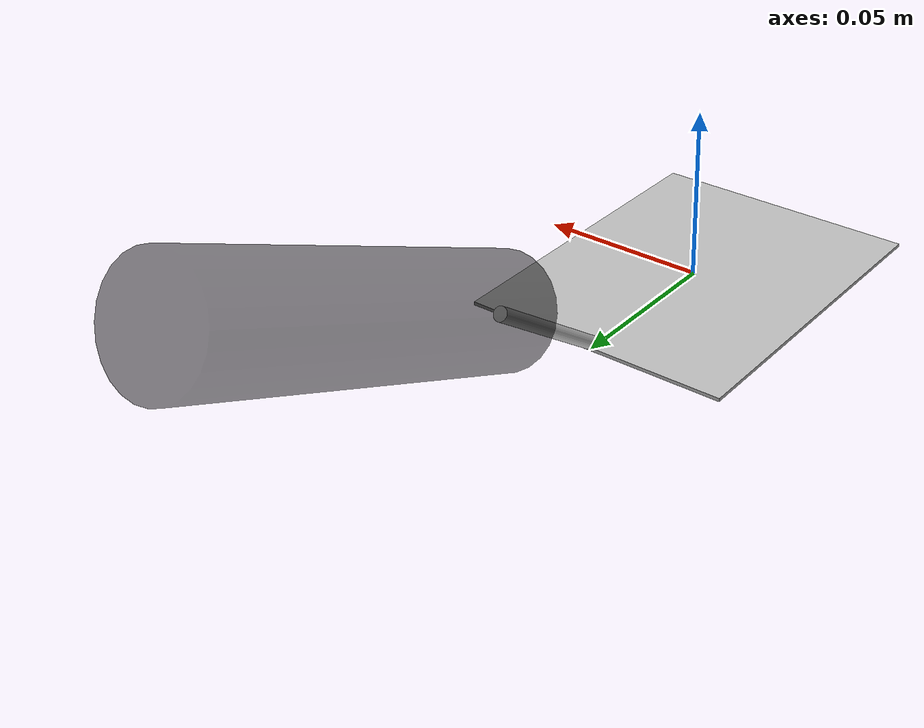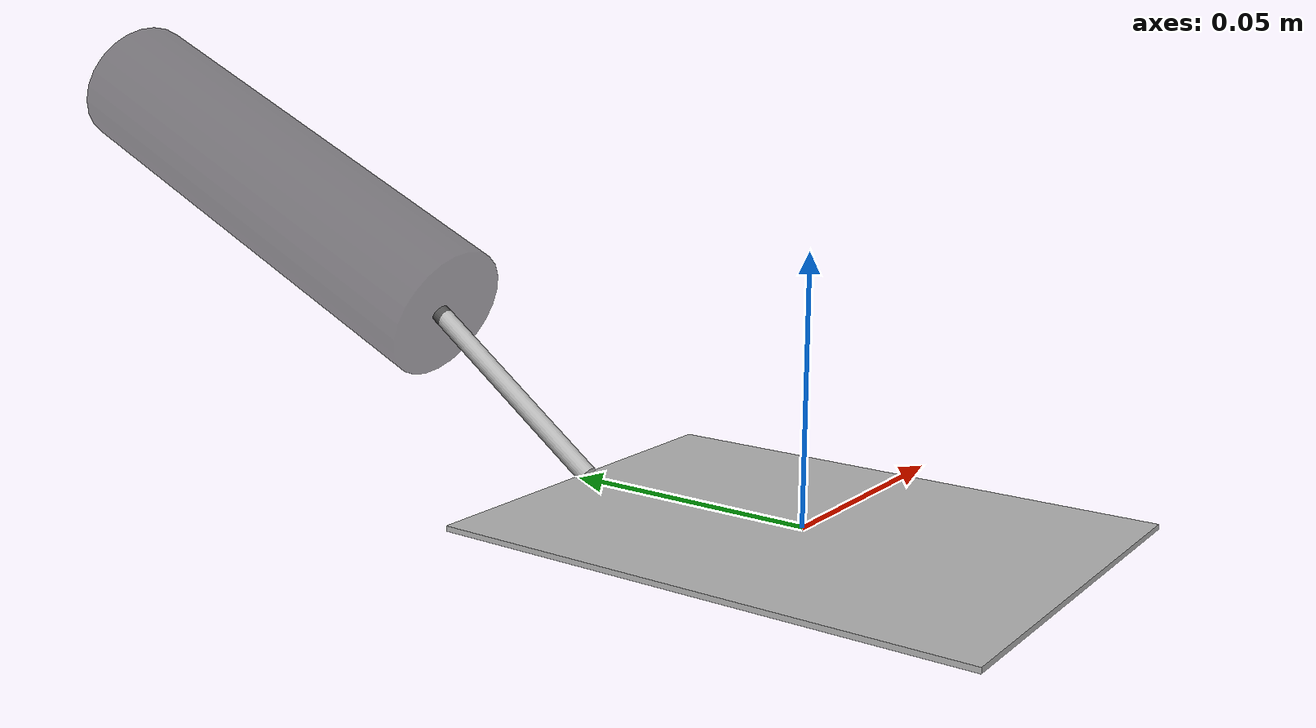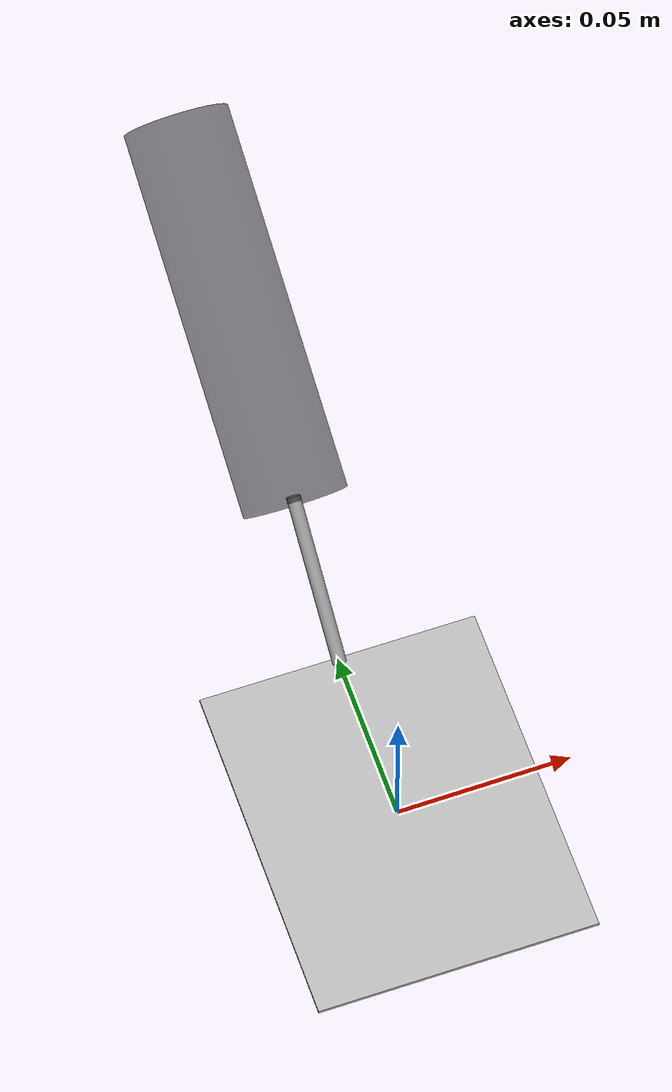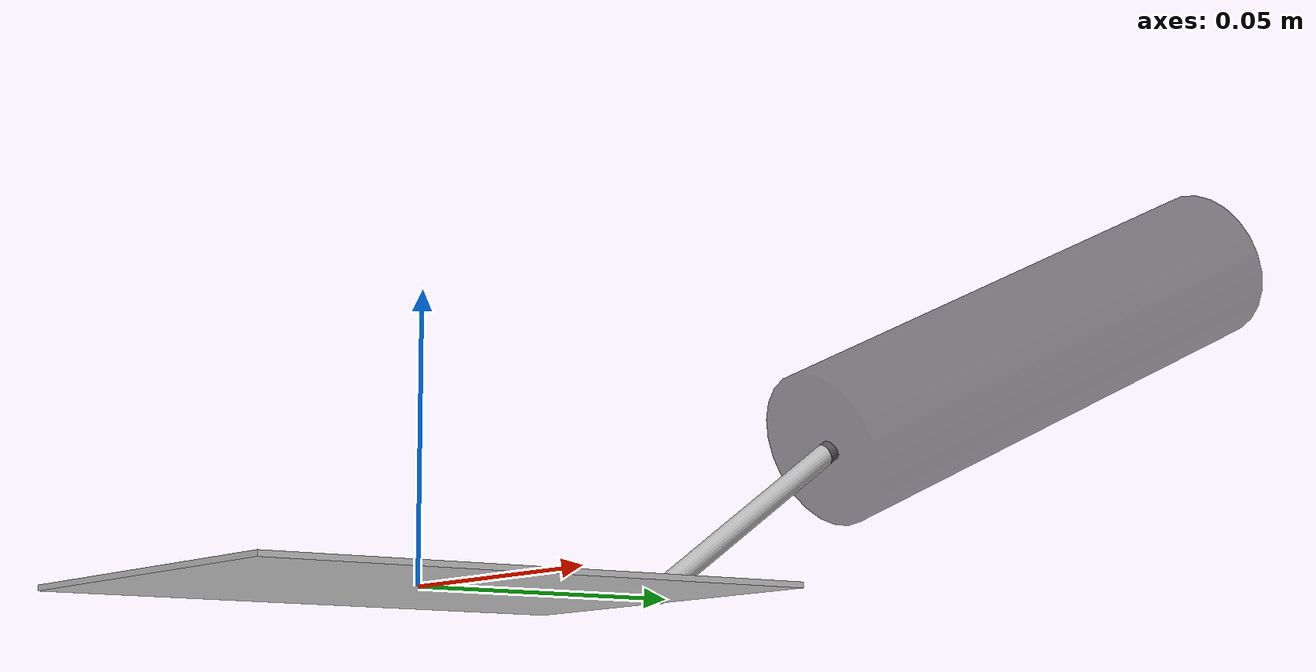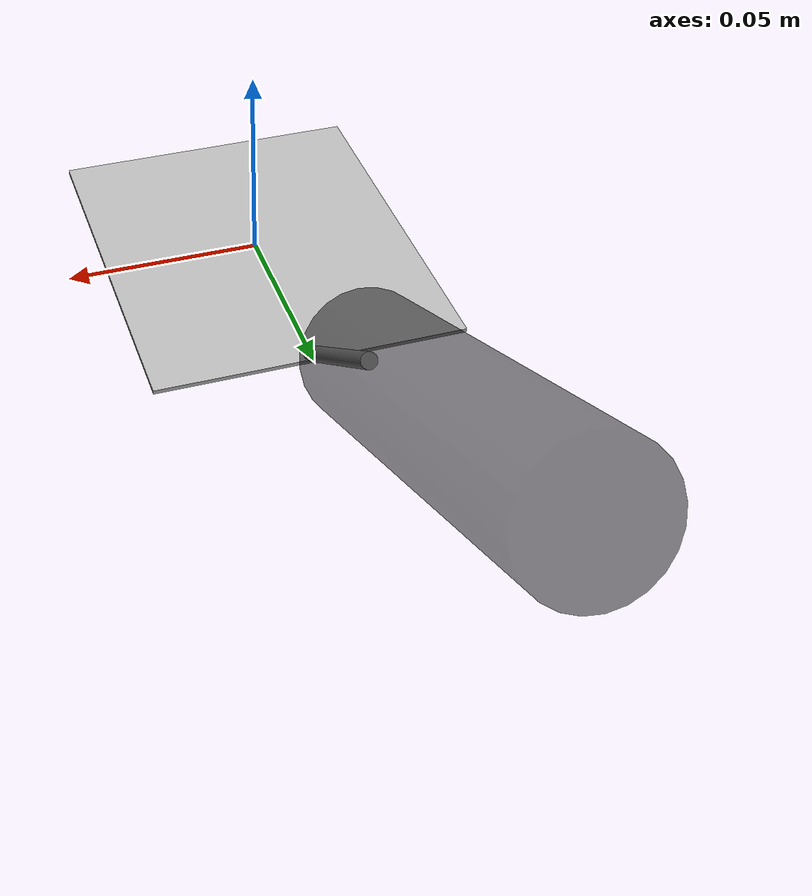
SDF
<?xml version="1.0"?>
<sdf version="1.7"
  xmlns:drake='drake.mit.edu'>
  <model name="spatula">
    <pose>0 0 0 0 0 0</pose>
    <link name="spatula">
      <inertial>
        <mass>0.068</mass>
        <inertia>
          <ixx>0.21095403274864072</ixx>
          <ixy>-4.264472553729218e-08</ixy>
          <ixz>0.0</ixz>
          <iyy>0.03710803288660893</iyy>
          <iyz>-0.06982169738550205</iyz>
          <izz>0.18858265237650276</izz>
        </inertia>
        <pose>0.0 0.115649 0.044471 0 0 0</pose>
      </inertial>
      <visual name="spatula_connector_visual">
        <pose>0 0.0675 0.015 -0.94 0 0</pose>
        <geometry>
          <cylinder>
            <radius>0.002</radius>
            <length>0.048</length>
          </cylinder>
        </geometry>
      </visual>
      <visual name="spatula_bottom_visual">
        <geometry>
          <box>
            <size>0.08 0.1 0.001</size>
          </box>
        </geometry>
      </visual>
      <visual name="spatula_handle_visual">
        <pose>0 0.135 0.052 2 0 0</pose>
        <material>
          <diffuse>0 0 0 0.5</diffuse>
        </material>
        <geometry>
          <cylinder>
            <radius>0.015</radius>
            <length>0.11</length>
          </cylinder>
        </geometry>
      </visual>
      <collision name="spatula_handle_collision">
        <pose>0 0.135 0.052 2 0 0</pose>
        <geometry>
          <cylinder>
            <radius>0.015</radius>
            <length>0.11</length>
          </cylinder>
        </geometry>
        <drake:proximity_properties>
          <drake:mesh_resolution_hint>0.005</drake:mesh_resolution_hint>
          <drake:compliant_hydroelastic/>
          <drake:hydroelastic_modulus>1e8</drake:hydroelastic_modulus>
          <drake:hunt_crossley_dissipation>50</drake:hunt_crossley_dissipation>
          <drake:relaxation_time>0.1</drake:relaxation_time>
          <drake:mu_dynamic>1.0</drake:mu_dynamic>
        </drake:proximity_properties>
      </collision>
    </link>
  </model>
</sdf>
